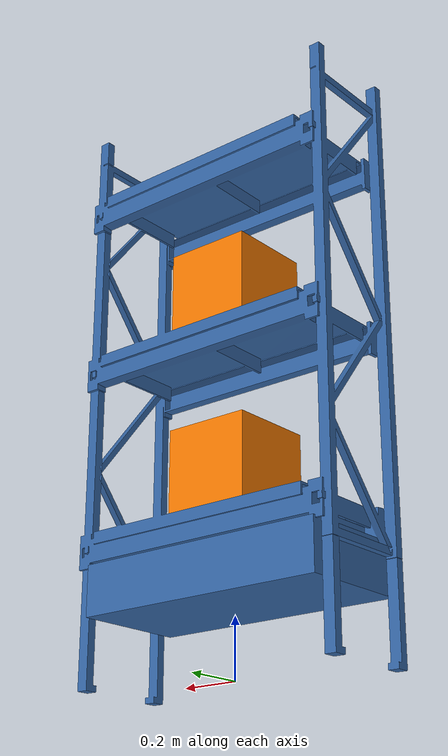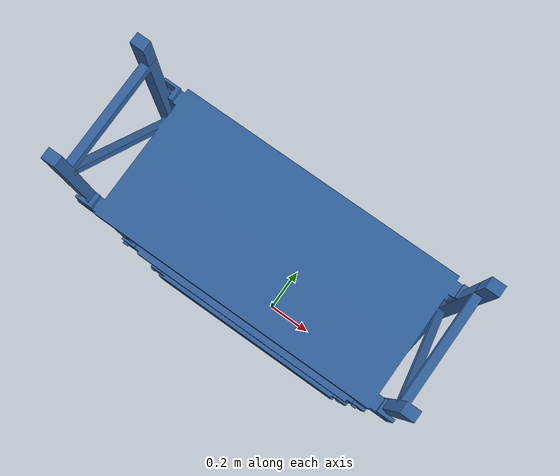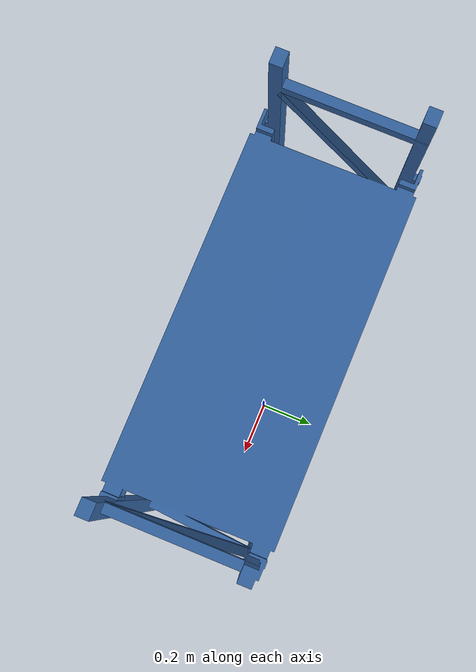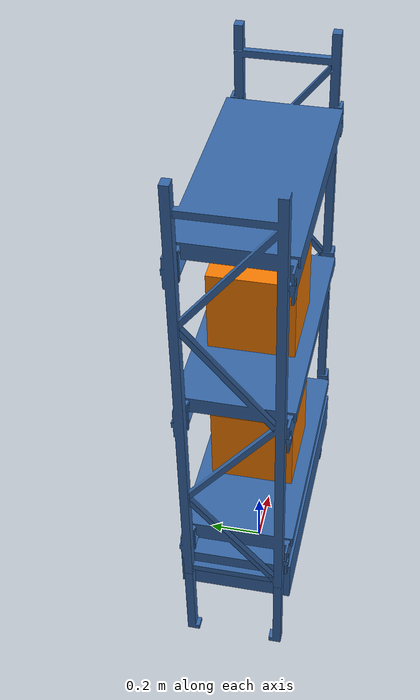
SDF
<?xml version='1.0'?>
<sdf version='1.7'>
  <model name='ssapang_shelf_with_box'>
    <link name='shelf::shelf::link_0'>
      <inertial>
        <mass>0.001</mass>
        <inertia>
          <ixx>7.71e-06</ixx>
          <ixy>0</ixy>
          <ixz>0</ixz>
          <iyy>7.71e-06</iyy>
          <iyz>0</iyz>
          <izz>4.2e-07</izz>
        </inertia>
        <pose>0 0 0 0 -0 0</pose>
      </inertial>
      <pose>0 0 0 0 0 0</pose>
      <gravity>1</gravity>
      <self_collide>0</self_collide>
      <kinematic>0</kinematic>
      <enable_wind>0</enable_wind>
      <visual name='visual'>
        <pose>0 0 0 0 -0 0</pose>
        <geometry>
          <mesh>
            <uri>model://shelf/meshes/shelf.dae</uri>
            <scale>1 1 1</scale>
          </mesh>
        </geometry>
        <transparency>0</transparency>
        <cast_shadows>1</cast_shadows>
        <material>
          <shader type='pixel'>
            <normal_map>__default__</normal_map>
          </shader>
          <script>
            <name>ModelPreview_6::link_0::visual_MATERIAL_</name>
            <uri>__default__</uri>
          </script>
          <ambient>0.204 0.396 0.643 1</ambient>
          <diffuse>0.204 0.396 0.643 1</diffuse>
          <specular>0 0 0 1</specular>
          <emissive>0 0 0 1</emissive>
        </material>
      </visual>
      <visual name='ModelPreview_1::shelf::shelf::link_0::visual_3'>
        <pose>0 0 1.28 0 -0 0</pose>
        <geometry>
          <box>
            <size>0.3 0.3 0.3</size>
          </box>
        </geometry>
        <transparency>0</transparency>
        <cast_shadows>1</cast_shadows>
        <material>
          <shader type='pixel'>
            <normal_map>__default__</normal_map>
          </shader>
          <script>
            <name>ModelPreview_3::link_0::visual_1_MATERIAL_ModelPreview_6::link_0::visual_MATERIAL_</name>
            <uri>__default__</uri>
          </script>
          <ambient>0.961 0.475 0 1</ambient>
          <diffuse>0.961 0.475 0 1</diffuse>
          <specular>0 0 0 1</specular>
          <emissive>0 0 0 1</emissive>
        </material>
      </visual>
      <visual name='ModelPreview_3::link_0::visual_1'>
        <pose>0 0 0.31 0 -0 0</pose>
        <geometry>
          <box>
            <size>0.9 0.4 0.17</size>
          </box>
        </geometry>
        <transparency>0</transparency>
        <cast_shadows>1</cast_shadows>
        <material>
          <shader type='pixel'>
            <normal_map>__default__</normal_map>
          </shader>
          <script>
            <name>ModelPreview_3::link_0::visual_1_MATERIAL_ModelPreview_6::link_0::visual_MATERIAL_</name>
            <uri>__default__</uri>
          </script>
          <ambient>0.204 0.396 0.643 1</ambient>
          <diffuse>0.204 0.396 0.643 1</diffuse>
          <specular>0 0 0 1</specular>
          <emissive>0 0 0 1</emissive>
        </material>
      </visual>
      <visual name='ModelPreview_1::shelf::shelf::link_0::visual_2'>
        <pose>0 0 0.65 0 -0 0</pose>
        <geometry>
          <box>
            <size>0.3 0.3 0.3</size>
          </box>
        </geometry>
        <transparency>0</transparency>
        <cast_shadows>1</cast_shadows>
        <material>
          <shader type='pixel'>
            <normal_map>__default__</normal_map>
          </shader>
          <script>
            <name>ModelPreview_3::link_0::visual_1_MATERIAL_ModelPreview_6::link_0::visual_MATERIAL_</name>
            <uri>__default__</uri>
          </script>
          <ambient>0.961 0.475 0 1</ambient>
          <diffuse>0.961 0.475 0 1</diffuse>
          <specular>0 0 0 1</specular>
          <emissive>0 0 0 1</emissive>
        </material>
      </visual>
      <collision name='slide_2'>
        <laser_retro>0</laser_retro>
        <max_contacts>10</max_contacts>
        <pose>0 0 1.13 0.05 -0 0</pose>
        <geometry>
          <box>
            <size>0.32 0.35 0.005</size>
          </box>
        </geometry>
        <surface>
          <friction>
            <ode>
              <mu>1</mu>
              <mu2>1</mu2>
              <fdir1>0 0 0</fdir1>
              <slip1>0</slip1>
              <slip2>0</slip2>
            </ode>
            <torsional>
              <coefficient>1</coefficient>
              <patch_radius>0</patch_radius>
              <surface_radius>0</surface_radius>
              <use_patch_radius>1</use_patch_radius>
              <ode>
                <slip>0</slip>
              </ode>
            </torsional>
          </friction>
          <bounce>
            <restitution_coefficient>0</restitution_coefficient>
            <threshold>1e+06</threshold>
          </bounce>
          <contact>
            <collide_without_contact>0</collide_without_contact>
            <collide_without_contact_bitmask>1</collide_without_contact_bitmask>
            <collide_bitmask>1</collide_bitmask>
            <ode>
              <soft_cfm>0</soft_cfm>
              <soft_erp>0.2</soft_erp>
              <kp>1e+13</kp>
              <kd>1</kd>
              <max_vel>0.01</max_vel>
              <min_depth>0</min_depth>
            </ode>
            <bullet>
              <split_impulse>1</split_impulse>
              <split_impulse_penetration_threshold>-0.01</split_impulse_penetration_threshold>
              <soft_cfm>0</soft_cfm>
              <soft_erp>0.2</soft_erp>
              <kp>1e+13</kp>
              <kd>1</kd>
            </bullet>
          </contact>
        </surface>
      </collision>
      <collision name='back_2'>
        <laser_retro>0</laser_retro>
        <max_contacts>10</max_contacts>
        <pose>0 -0.175 1.14 0 -0 0</pose>
        <geometry>
          <box>
            <size>0.32 0.01 0.01</size>
          </box>
        </geometry>
        <surface>
          <friction>
            <ode>
              <mu>1</mu>
              <mu2>1</mu2>
              <fdir1>0 0 0</fdir1>
              <slip1>0</slip1>
              <slip2>0</slip2>
            </ode>
            <torsional>
              <coefficient>1</coefficient>
              <patch_radius>0</patch_radius>
              <surface_radius>0</surface_radius>
              <use_patch_radius>1</use_patch_radius>
              <ode>
                <slip>0</slip>
              </ode>
            </torsional>
          </friction>
          <bounce>
            <restitution_coefficient>0</restitution_coefficient>
            <threshold>1e+06</threshold>
          </bounce>
          <contact>
            <collide_without_contact>0</collide_without_contact>
            <collide_without_contact_bitmask>1</collide_without_contact_bitmask>
            <collide_bitmask>1</collide_bitmask>
            <ode>
              <soft_cfm>0</soft_cfm>
              <soft_erp>0.2</soft_erp>
              <kp>1e+13</kp>
              <kd>1</kd>
              <max_vel>0.01</max_vel>
              <min_depth>0</min_depth>
            </ode>
            <bullet>
              <split_impulse>1</split_impulse>
              <split_impulse_penetration_threshold>-0.01</split_impulse_penetration_threshold>
              <soft_cfm>0</soft_cfm>
              <soft_erp>0.2</soft_erp>
              <kp>1e+13</kp>
              <kd>1</kd>
            </bullet>
          </contact>
        </surface>
      </collision>
      <collision name='sideSlide_2_1'>
        <laser_retro>0</laser_retro>
        <max_contacts>10</max_contacts>
        <pose>0.16 0 1.13 0 -0 0</pose>
        <geometry>
          <box>
            <size>0.01 0.4 0.05</size>
          </box>
        </geometry>
        <surface>
          <friction>
            <ode>
              <mu>1</mu>
              <mu2>1</mu2>
              <fdir1>0 0 0</fdir1>
              <slip1>0</slip1>
              <slip2>0</slip2>
            </ode>
            <torsional>
              <coefficient>1</coefficient>
              <patch_radius>0</patch_radius>
              <surface_radius>0</surface_radius>
              <use_patch_radius>1</use_patch_radius>
              <ode>
                <slip>0</slip>
              </ode>
            </torsional>
          </friction>
          <bounce>
            <restitution_coefficient>0</restitution_coefficient>
            <threshold>1e+06</threshold>
          </bounce>
          <contact>
            <collide_without_contact>0</collide_without_contact>
            <collide_without_contact_bitmask>1</collide_without_contact_bitmask>
            <collide_bitmask>1</collide_bitmask>
            <ode>
              <soft_cfm>0</soft_cfm>
              <soft_erp>0.2</soft_erp>
              <kp>1e+13</kp>
              <kd>1</kd>
              <max_vel>0.01</max_vel>
              <min_depth>0</min_depth>
            </ode>
            <bullet>
              <split_impulse>1</split_impulse>
              <split_impulse_penetration_threshold>-0.01</split_impulse_penetration_threshold>
              <soft_cfm>0</soft_cfm>
              <soft_erp>0.2</soft_erp>
              <kp>1e+13</kp>
              <kd>1</kd>
            </bullet>
          </contact>
        </surface>
      </collision>
      <collision name='sideSlide_2_2'>
        <laser_retro>0</laser_retro>
        <max_contacts>10</max_contacts>
        <pose>-0.16 0 1.13 0 -0 0</pose>
        <geometry>
          <box>
            <size>0.01 0.4 0.05</size>
          </box>
        </geometry>
        <surface>
          <friction>
            <ode>
              <mu>1</mu>
              <mu2>1</mu2>
              <fdir1>0 0 0</fdir1>
              <slip1>0</slip1>
              <slip2>0</slip2>
            </ode>
            <torsional>
              <coefficient>1</coefficient>
              <patch_radius>0</patch_radius>
              <surface_radius>0</surface_radius>
              <use_patch_radius>1</use_patch_radius>
              <ode>
                <slip>0</slip>
              </ode>
            </torsional>
          </friction>
          <bounce>
            <restitution_coefficient>0</restitution_coefficient>
            <threshold>1e+06</threshold>
          </bounce>
          <contact>
            <collide_without_contact>0</collide_without_contact>
            <collide_without_contact_bitmask>1</collide_without_contact_bitmask>
            <collide_bitmask>1</collide_bitmask>
            <ode>
              <soft_cfm>0</soft_cfm>
              <soft_erp>0.2</soft_erp>
              <kp>1e+13</kp>
              <kd>1</kd>
              <max_vel>0.01</max_vel>
              <min_depth>0</min_depth>
            </ode>
            <bullet>
              <split_impulse>1</split_impulse>
              <split_impulse_penetration_threshold>-0.01</split_impulse_penetration_threshold>
              <soft_cfm>0</soft_cfm>
              <soft_erp>0.2</soft_erp>
              <kp>1e+13</kp>
              <kd>1</kd>
            </bullet>
          </contact>
        </surface>
      </collision>
      <collision name='slide_1'>
        <laser_retro>0</laser_retro>
        <max_contacts>10</max_contacts>
        <pose>0 0 0.505 0.05 -0 0</pose>
        <geometry>
          <box>
            <size>0.32 0.35 0.005</size>
          </box>
        </geometry>
        <surface>
          <friction>
            <ode>
              <mu>1</mu>
              <mu2>1</mu2>
              <fdir1>0 0 0</fdir1>
              <slip1>0</slip1>
              <slip2>0</slip2>
            </ode>
            <torsional>
              <coefficient>1</coefficient>
              <patch_radius>0</patch_radius>
              <surface_radius>0</surface_radius>
              <use_patch_radius>1</use_patch_radius>
              <ode>
                <slip>0</slip>
              </ode>
            </torsional>
          </friction>
          <bounce>
            <restitution_coefficient>0</restitution_coefficient>
            <threshold>1e+06</threshold>
          </bounce>
          <contact>
            <collide_without_contact>0</collide_without_contact>
            <collide_without_contact_bitmask>1</collide_without_contact_bitmask>
            <collide_bitmask>1</collide_bitmask>
            <ode>
              <soft_cfm>0</soft_cfm>
              <soft_erp>0.2</soft_erp>
              <kp>1e+13</kp>
              <kd>1</kd>
              <max_vel>0.01</max_vel>
              <min_depth>0</min_depth>
            </ode>
            <bullet>
              <split_impulse>1</split_impulse>
              <split_impulse_penetration_threshold>-0.01</split_impulse_penetration_threshold>
              <soft_cfm>0</soft_cfm>
              <soft_erp>0.2</soft_erp>
              <kp>1e+13</kp>
              <kd>1</kd>
            </bullet>
          </contact>
        </surface>
      </collision>
      <collision name='back_1'>
        <laser_retro>0</laser_retro>
        <max_contacts>10</max_contacts>
        <pose>0 -0.175 0.51 0 -0 0</pose>
        <geometry>
          <box>
            <size>0.32 0.01 0.01</size>
          </box>
        </geometry>
        <surface>
          <friction>
            <ode>
              <mu>1</mu>
              <mu2>1</mu2>
              <fdir1>0 0 0</fdir1>
              <slip1>0</slip1>
              <slip2>0</slip2>
            </ode>
            <torsional>
              <coefficient>1</coefficient>
              <patch_radius>0</patch_radius>
              <surface_radius>0</surface_radius>
              <use_patch_radius>1</use_patch_radius>
              <ode>
                <slip>0</slip>
              </ode>
            </torsional>
          </friction>
          <bounce>
            <restitution_coefficient>0</restitution_coefficient>
            <threshold>1e+06</threshold>
          </bounce>
          <contact>
            <collide_without_contact>0</collide_without_contact>
            <collide_without_contact_bitmask>1</collide_without_contact_bitmask>
            <collide_bitmask>1</collide_bitmask>
            <ode>
              <soft_cfm>0</soft_cfm>
              <soft_erp>0.2</soft_erp>
              <kp>1e+13</kp>
              <kd>1</kd>
              <max_vel>0.01</max_vel>
              <min_depth>0</min_depth>
            </ode>
            <bullet>
              <split_impulse>1</split_impulse>
              <split_impulse_penetration_threshold>-0.01</split_impulse_penetration_threshold>
              <soft_cfm>0</soft_cfm>
              <soft_erp>0.2</soft_erp>
              <kp>1e+13</kp>
              <kd>1</kd>
            </bullet>
          </contact>
        </surface>
      </collision>
      <collision name='sideSlide_1_1'>
        <laser_retro>0</laser_retro>
        <max_contacts>10</max_contacts>
        <pose>0.16 0 0.51 0 -0 0</pose>
        <geometry>
          <box>
            <size>0.01 0.4 0.05</size>
          </box>
        </geometry>
        <surface>
          <friction>
            <ode>
              <mu>1</mu>
              <mu2>1</mu2>
              <fdir1>0 0 0</fdir1>
              <slip1>0</slip1>
              <slip2>0</slip2>
            </ode>
            <torsional>
              <coefficient>1</coefficient>
              <patch_radius>0</patch_radius>
              <surface_radius>0</surface_radius>
              <use_patch_radius>1</use_patch_radius>
              <ode>
                <slip>0</slip>
              </ode>
            </torsional>
          </friction>
          <bounce>
            <restitution_coefficient>0</restitution_coefficient>
            <threshold>1e+06</threshold>
          </bounce>
          <contact>
            <collide_without_contact>0</collide_without_contact>
            <collide_without_contact_bitmask>1</collide_without_contact_bitmask>
            <collide_bitmask>1</collide_bitmask>
            <ode>
              <soft_cfm>0</soft_cfm>
              <soft_erp>0.2</soft_erp>
              <kp>1e+13</kp>
              <kd>1</kd>
              <max_vel>0.01</max_vel>
              <min_depth>0</min_depth>
            </ode>
            <bullet>
              <split_impulse>1</split_impulse>
              <split_impulse_penetration_threshold>-0.01</split_impulse_penetration_threshold>
              <soft_cfm>0</soft_cfm>
              <soft_erp>0.2</soft_erp>
              <kp>1e+13</kp>
              <kd>1</kd>
            </bullet>
          </contact>
        </surface>
      </collision>
      <collision name='sideSlide_1_2'>
        <laser_retro>0</laser_retro>
        <max_contacts>10</max_contacts>
        <pose>-0.16 0 0.51 0 -0 0</pose>
        <geometry>
          <box>
            <size>0.01 0.4 0.05</size>
          </box>
        </geometry>
        <surface>
          <friction>
            <ode>
              <mu>1</mu>
              <mu2>1</mu2>
              <fdir1>0 0 0</fdir1>
              <slip1>0</slip1>
              <slip2>0</slip2>
            </ode>
            <torsional>
              <coefficient>1</coefficient>
              <patch_radius>0</patch_radius>
              <surface_radius>0</surface_radius>
              <use_patch_radius>1</use_patch_radius>
              <ode>
                <slip>0</slip>
              </ode>
            </torsional>
          </friction>
          <bounce>
            <restitution_coefficient>0</restitution_coefficient>
            <threshold>1e+06</threshold>
          </bounce>
          <contact>
            <collide_without_contact>0</collide_without_contact>
            <collide_without_contact_bitmask>1</collide_without_contact_bitmask>
            <collide_bitmask>1</collide_bitmask>
            <ode>
              <soft_cfm>0</soft_cfm>
              <soft_erp>0.2</soft_erp>
              <kp>1e+13</kp>
              <kd>1</kd>
              <max_vel>0.01</max_vel>
              <min_depth>0</min_depth>
            </ode>
            <bullet>
              <split_impulse>1</split_impulse>
              <split_impulse_penetration_threshold>-0.01</split_impulse_penetration_threshold>
              <soft_cfm>0</soft_cfm>
              <soft_erp>0.2</soft_erp>
              <kp>1e+13</kp>
              <kd>1</kd>
            </bullet>
          </contact>
        </surface>
      </collision>
      <collision name='column_2'>
        <laser_retro>0</laser_retro>
        <max_contacts>10</max_contacts>
        <pose>-0.425 -0.175 0.9 0 -0 0</pose>
        <geometry>
          <box>
            <size>0.05 0.05 1.8</size>
          </box>
        </geometry>
        <surface>
          <friction>
            <ode>
              <mu>1</mu>
              <mu2>1</mu2>
              <fdir1>0 0 0</fdir1>
              <slip1>0</slip1>
              <slip2>0</slip2>
            </ode>
            <torsional>
              <coefficient>1</coefficient>
              <patch_radius>0</patch_radius>
              <surface_radius>0</surface_radius>
              <use_patch_radius>1</use_patch_radius>
              <ode>
                <slip>0</slip>
              </ode>
            </torsional>
          </friction>
          <bounce>
            <restitution_coefficient>0</restitution_coefficient>
            <threshold>1e+06</threshold>
          </bounce>
          <contact>
            <collide_without_contact>0</collide_without_contact>
            <collide_without_contact_bitmask>1</collide_without_contact_bitmask>
            <collide_bitmask>1</collide_bitmask>
            <ode>
              <soft_cfm>0</soft_cfm>
              <soft_erp>0.2</soft_erp>
              <kp>1e+13</kp>
              <kd>1</kd>
              <max_vel>0.01</max_vel>
              <min_depth>0</min_depth>
            </ode>
            <bullet>
              <split_impulse>1</split_impulse>
              <split_impulse_penetration_threshold>-0.01</split_impulse_penetration_threshold>
              <soft_cfm>0</soft_cfm>
              <soft_erp>0.2</soft_erp>
              <kp>1e+13</kp>
              <kd>1</kd>
            </bullet>
          </contact>
        </surface>
      </collision>
      <collision name='column_1'>
        <laser_retro>0</laser_retro>
        <max_contacts>10</max_contacts>
        <pose>-0.425 0.175 0.9 0 -0 0</pose>
        <geometry>
          <box>
            <size>0.05 0.05 1.8</size>
          </box>
        </geometry>
        <surface>
          <friction>
            <ode>
              <mu>1</mu>
              <mu2>1</mu2>
              <fdir1>0 0 0</fdir1>
              <slip1>0</slip1>
              <slip2>0</slip2>
            </ode>
            <torsional>
              <coefficient>1</coefficient>
              <patch_radius>0</patch_radius>
              <surface_radius>0</surface_radius>
              <use_patch_radius>1</use_patch_radius>
              <ode>
                <slip>0</slip>
              </ode>
            </torsional>
          </friction>
          <bounce>
            <restitution_coefficient>0</restitution_coefficient>
            <threshold>1e+06</threshold>
          </bounce>
          <contact>
            <collide_without_contact>0</collide_without_contact>
            <collide_without_contact_bitmask>1</collide_without_contact_bitmask>
            <collide_bitmask>1</collide_bitmask>
            <ode>
              <soft_cfm>0</soft_cfm>
              <soft_erp>0.2</soft_erp>
              <kp>1e+13</kp>
              <kd>1</kd>
              <max_vel>0.01</max_vel>
              <min_depth>0</min_depth>
            </ode>
            <bullet>
              <split_impulse>1</split_impulse>
              <split_impulse_penetration_threshold>-0.01</split_impulse_penetration_threshold>
              <soft_cfm>0</soft_cfm>
              <soft_erp>0.2</soft_erp>
              <kp>1e+13</kp>
              <kd>1</kd>
            </bullet>
          </contact>
        </surface>
      </collision>
      <collision name='column_3'>
        <laser_retro>0</laser_retro>
        <max_contacts>10</max_contacts>
        <pose>0.425 0.175 0.9 0 -0 0</pose>
        <geometry>
          <box>
            <size>0.05 0.05 1.8</size>
          </box>
        </geometry>
        <surface>
          <friction>
            <ode>
              <mu>1</mu>
              <mu2>1</mu2>
              <fdir1>0 0 0</fdir1>
              <slip1>0</slip1>
              <slip2>0</slip2>
            </ode>
            <torsional>
              <coefficient>1</coefficient>
              <patch_radius>0</patch_radius>
              <surface_radius>0</surface_radius>
              <use_patch_radius>1</use_patch_radius>
              <ode>
                <slip>0</slip>
              </ode>
            </torsional>
          </friction>
          <bounce>
            <restitution_coefficient>0</restitution_coefficient>
            <threshold>1e+06</threshold>
          </bounce>
          <contact>
            <collide_without_contact>0</collide_without_contact>
            <collide_without_contact_bitmask>1</collide_without_contact_bitmask>
            <collide_bitmask>1</collide_bitmask>
            <ode>
              <soft_cfm>0</soft_cfm>
              <soft_erp>0.2</soft_erp>
              <kp>1e+13</kp>
              <kd>1</kd>
              <max_vel>0.01</max_vel>
              <min_depth>0</min_depth>
            </ode>
            <bullet>
              <split_impulse>1</split_impulse>
              <split_impulse_penetration_threshold>-0.01</split_impulse_penetration_threshold>
              <soft_cfm>0</soft_cfm>
              <soft_erp>0.2</soft_erp>
              <kp>1e+13</kp>
              <kd>1</kd>
            </bullet>
          </contact>
        </surface>
      </collision>
      <collision name='column_4'>
        <laser_retro>0</laser_retro>
        <max_contacts>10</max_contacts>
        <pose>0.425 -0.175 0.9 0 -0 0</pose>
        <geometry>
          <box>
            <size>0.05 0.05 1.8</size>
          </box>
        </geometry>
        <surface>
          <friction>
            <ode>
              <mu>1</mu>
              <mu2>1</mu2>
              <fdir1>0 0 0</fdir1>
              <slip1>0</slip1>
              <slip2>0</slip2>
            </ode>
            <torsional>
              <coefficient>1</coefficient>
              <patch_radius>0</patch_radius>
              <surface_radius>0</surface_radius>
              <use_patch_radius>1</use_patch_radius>
              <ode>
                <slip>0</slip>
              </ode>
            </torsional>
          </friction>
          <bounce>
            <restitution_coefficient>0</restitution_coefficient>
            <threshold>1e+06</threshold>
          </bounce>
          <contact>
            <collide_without_contact>0</collide_without_contact>
            <collide_without_contact_bitmask>1</collide_without_contact_bitmask>
            <collide_bitmask>1</collide_bitmask>
            <ode>
              <soft_cfm>0</soft_cfm>
              <soft_erp>0.2</soft_erp>
              <kp>1e+13</kp>
              <kd>1</kd>
              <max_vel>0.01</max_vel>
              <min_depth>0</min_depth>
            </ode>
            <bullet>
              <split_impulse>1</split_impulse>
              <split_impulse_penetration_threshold>-0.01</split_impulse_penetration_threshold>
              <soft_cfm>0</soft_cfm>
              <soft_erp>0.2</soft_erp>
              <kp>1e+13</kp>
              <kd>1</kd>
            </bullet>
          </contact>
        </surface>
      </collision>
      <collision name='plate_2'>
        <laser_retro>0</laser_retro>
        <max_contacts>10</max_contacts>
        <pose>0 0 1.68 0 -0 0</pose>
        <geometry>
          <box>
            <size>0.9 0.4 0.1</size>
          </box>
        </geometry>
        <surface>
          <friction>
            <ode>
              <mu>1</mu>
              <mu2>1</mu2>
              <fdir1>0 0 0</fdir1>
              <slip1>0</slip1>
              <slip2>0</slip2>
            </ode>
            <torsional>
              <coefficient>1</coefficient>
              <patch_radius>0</patch_radius>
              <surface_radius>0</surface_radius>
              <use_patch_radius>1</use_patch_radius>
              <ode>
                <slip>0</slip>
              </ode>
            </torsional>
          </friction>
          <bounce>
            <restitution_coefficient>0</restitution_coefficient>
            <threshold>1e+06</threshold>
          </bounce>
          <contact>
            <collide_without_contact>0</collide_without_contact>
            <collide_without_contact_bitmask>1</collide_without_contact_bitmask>
            <collide_bitmask>1</collide_bitmask>
            <ode>
              <soft_cfm>0</soft_cfm>
              <soft_erp>0.2</soft_erp>
              <kp>1e+13</kp>
              <kd>1</kd>
              <max_vel>0.01</max_vel>
              <min_depth>0</min_depth>
            </ode>
            <bullet>
              <split_impulse>1</split_impulse>
              <split_impulse_penetration_threshold>-0.01</split_impulse_penetration_threshold>
              <soft_cfm>0</soft_cfm>
              <soft_erp>0.2</soft_erp>
              <kp>1e+13</kp>
              <kd>1</kd>
            </bullet>
          </contact>
        </surface>
      </collision>
      <collision name='plate_1'>
        <laser_retro>0</laser_retro>
        <max_contacts>10</max_contacts>
        <pose>0 0 0.365 0 -0 0</pose>
        <geometry>
          <box>
            <size>0.9 0.4 0.27</size>
          </box>
        </geometry>
        <surface>
          <friction>
            <ode>
              <mu>100</mu>
              <mu2>100</mu2>
              <fdir1>0 0 0</fdir1>
              <slip1>0</slip1>
              <slip2>0</slip2>
            </ode>
            <torsional>
              <coefficient>1</coefficient>
              <patch_radius>0</patch_radius>
              <surface_radius>0</surface_radius>
              <use_patch_radius>1</use_patch_radius>
              <ode>
                <slip>0</slip>
              </ode>
            </torsional>
          </friction>
          <bounce>
            <restitution_coefficient>0</restitution_coefficient>
            <threshold>1e+06</threshold>
          </bounce>
          <contact>
            <collide_without_contact>0</collide_without_contact>
            <collide_without_contact_bitmask>1</collide_without_contact_bitmask>
            <collide_bitmask>1</collide_bitmask>
            <ode>
              <soft_cfm>0</soft_cfm>
              <soft_erp>0.2</soft_erp>
              <kp>1e+13</kp>
              <kd>1</kd>
              <max_vel>0.01</max_vel>
              <min_depth>0</min_depth>
            </ode>
            <bullet>
              <split_impulse>1</split_impulse>
              <split_impulse_penetration_threshold>-0.01</split_impulse_penetration_threshold>
              <soft_cfm>0</soft_cfm>
              <soft_erp>0.2</soft_erp>
              <kp>1e+13</kp>
              <kd>1</kd>
            </bullet>
          </contact>
        </surface>
      </collision>
      <collision name='plate_3'>
        <laser_retro>0</laser_retro>
        <max_contacts>10</max_contacts>
        <pose>0 0 1.08 0 -0 0</pose>
        <geometry>
          <box>
            <size>0.9 0.4 0.1</size>
          </box>
        </geometry>
        <surface>
          <friction>
            <ode>
              <mu>1</mu>
              <mu2>1</mu2>
              <fdir1>0 0 0</fdir1>
              <slip1>0</slip1>
              <slip2>0</slip2>
            </ode>
            <torsional>
              <coefficient>1</coefficient>
              <patch_radius>0</patch_radius>
              <surface_radius>0</surface_radius>
              <use_patch_radius>1</use_patch_radius>
              <ode>
                <slip>0</slip>
              </ode>
            </torsional>
          </friction>
          <bounce>
            <restitution_coefficient>0</restitution_coefficient>
            <threshold>1e+06</threshold>
          </bounce>
          <contact>
            <collide_without_contact>0</collide_without_contact>
            <collide_without_contact_bitmask>1</collide_without_contact_bitmask>
            <collide_bitmask>1</collide_bitmask>
            <ode>
              <soft_cfm>0</soft_cfm>
              <soft_erp>0.2</soft_erp>
              <kp>1e+13</kp>
              <kd>1</kd>
              <max_vel>0.01</max_vel>
              <min_depth>0</min_depth>
            </ode>
            <bullet>
              <split_impulse>1</split_impulse>
              <split_impulse_penetration_threshold>-0.01</split_impulse_penetration_threshold>
              <soft_cfm>0</soft_cfm>
              <soft_erp>0.2</soft_erp>
              <kp>1e+13</kp>
              <kd>1</kd>
            </bullet>
          </contact>
        </surface>
      </collision>
    </link>
    <static>0</static>
    <allow_auto_disable>1</allow_auto_disable>
  </model>
</sdf>
